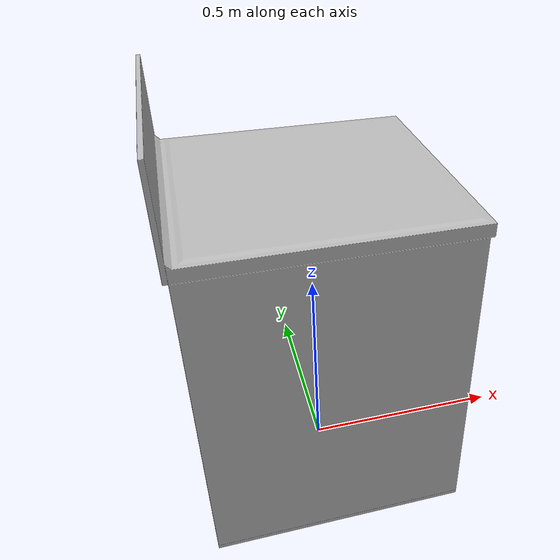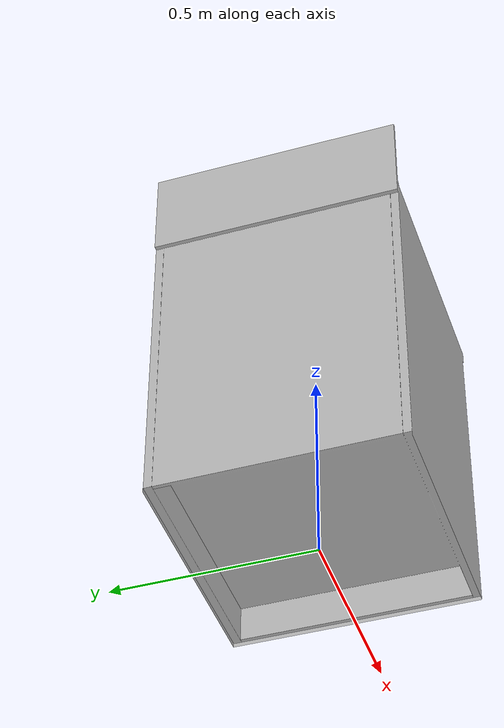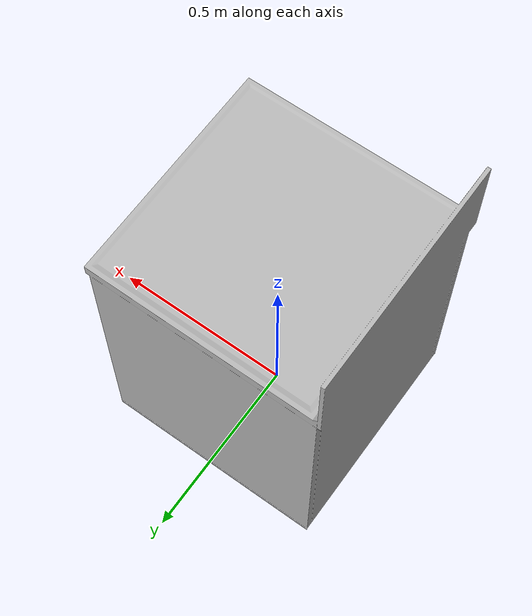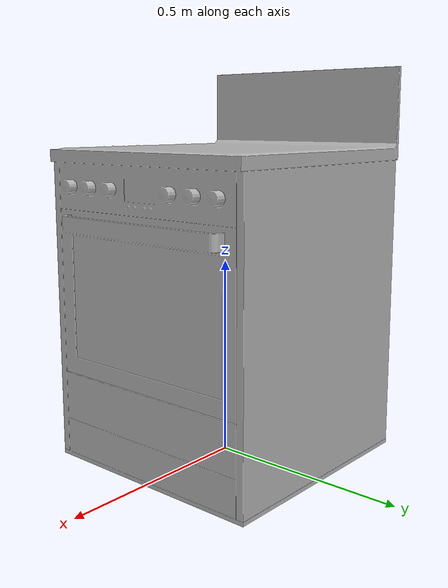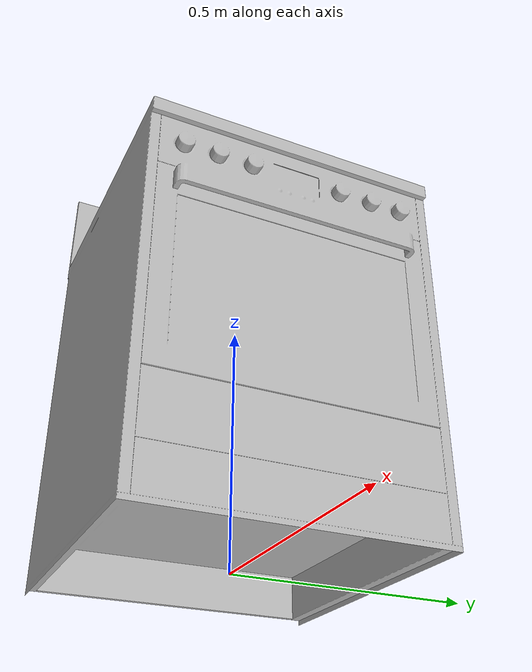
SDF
<?xml version='1.0'?>
<sdf version='1.4'>
  <model name='662'>
    <pose>0 0 0 0 0 0</pose>
    <static>true</static>
    <link name='link'>
      <collision name='collision'>
        <pose>0 0 0 0 0 0</pose>
        <geometry>
          <box>
            <size>0.639933 0.600014 2</size>
          </box>
        </geometry>
      </collision>
      <visual name='visual'>
        <pose>0 0 0 0 0 0</pose>
        <geometry>
          <mesh><uri>model://662/662.dae</uri></mesh>
        </geometry>
      </visual>
    </link>
  </model>
</sdf>
